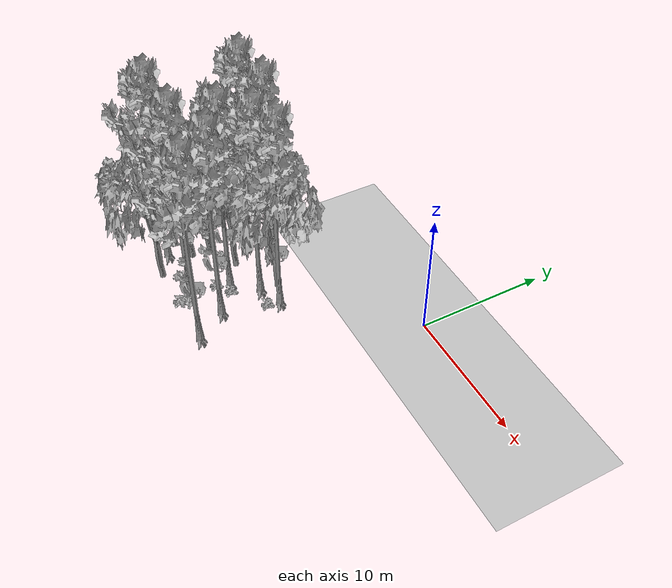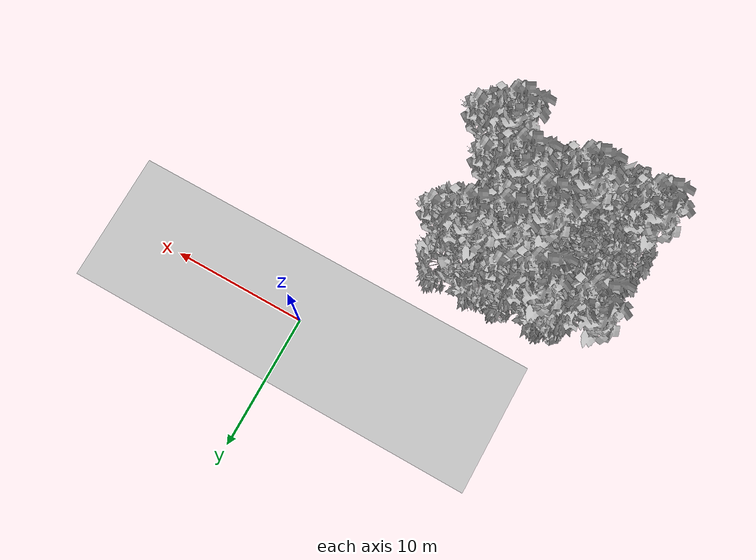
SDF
<sdf version="1.7">
 <world name="default">
  <model name="ground_plane">
   <static>1</static>
   <link name="link">
    <collision name="collision">
     <geometry><plane><normal>0 0 1</normal><size>100 100</size></plane></geometry>
     <surface><contact><ode><min_depth>0.01</min_depth><max_vel>0</max_vel></ode></contact></surface>
    </collision>
    <visual name="grass">
     <cast_shadows>0</cast_shadows>
     <geometry>
      <mesh>
       <scale>0.5814285714285714 0.18142857142857144 0.1</scale>
       <uri>file://grass_plane/meshes/grass_plane.dae</uri>
      </mesh>
     </geometry>
    </visual>
   </link>
  </model>
  <model name="Tree 33">
   <static>1</static>
   <pose>-8.080459085168307 -12.419843880254746 0 1.57079 -0 0</pose>
   <link name="link">
    <collision name="collision">
     <geometry><mesh><scale>3.5 5 3.5</scale><uri>model://tree_9/meshes/tree_9.obj</uri></mesh></geometry>
    </collision>
    <visual name="visual">
     <geometry><mesh><scale>3.5 5 3.5</scale><uri>model://tree_9/meshes/tree_9.obj</uri></mesh></geometry>
    </visual>
   </link>
  </model>
  <model name="Tree 43">
   <static>1</static>
   <pose>-8.754490061471422 -7.617909862327358 0 1.57079 -0 0</pose>
   <link name="link">
    <collision name="collision">
     <geometry><mesh><scale>3.5 5 3.5</scale><uri>model://tree_2/meshes/tree_2.obj</uri></mesh></geometry>
    </collision>
    <visual name="visual">
     <geometry><mesh><scale>3.5 5 3.5</scale><uri>model://tree_2/meshes/tree_2.obj</uri></mesh></geometry>
    </visual>
   </link>
  </model>
  <model name="Tree 127">
   <static>1</static>
   <pose>-12.28447054021619 -9.516433737853282 0 1.57079 -0 0</pose>
   <link name="link">
    <collision name="collision">
     <geometry><mesh><scale>3.5 5 3.5</scale><uri>model://tree_2/meshes/tree_2.obj</uri></mesh></geometry>
    </collision>
    <visual name="visual">
     <geometry><mesh><scale>3.5 5 3.5</scale><uri>model://tree_2/meshes/tree_2.obj</uri></mesh></geometry>
    </visual>
   </link>
  </model>
  <model name="Tree 161">
   <static>1</static>
   <pose>-8.87230667218028 -8.933598551255471 0 1.57079 -0 0</pose>
   <link name="link">
    <collision name="collision">
     <geometry><mesh><scale>3.5 5 3.5</scale><uri>model://tree_9/meshes/tree_9.obj</uri></mesh></geometry>
    </collision>
    <visual name="visual">
     <geometry><mesh><scale>3.5 5 3.5</scale><uri>model://tree_9/meshes/tree_9.obj</uri></mesh></geometry>
    </visual>
   </link>
  </model>
  <model name="Tree 205">
   <static>1</static>
   <pose>-11.820287213092293 -6.8594873090986574 0 1.57079 -0 0</pose>
   <link name="link">
    <collision name="collision">
     <geometry><mesh><scale>3.5 5 3.5</scale><uri>model://tree_9/meshes/tree_9.obj</uri></mesh></geometry>
    </collision>
    <visual name="visual">
     <geometry><mesh><scale>3.5 5 3.5</scale><uri>model://tree_9/meshes/tree_9.obj</uri></mesh></geometry>
    </visual>
   </link>
  </model>
  <model name="Tree 240">
   <static>1</static>
   <pose>-11.57441435363588 -13.574028697626435 0 1.57079 -0 0</pose>
   <link name="link">
    <collision name="collision">
     <geometry><mesh><scale>3.5 5 3.5</scale><uri>model://tree_9/meshes/tree_9.obj</uri></mesh></geometry>
    </collision>
    <visual name="visual">
     <geometry><mesh><scale>3.5 5 3.5</scale><uri>model://tree_9/meshes/tree_9.obj</uri></mesh></geometry>
    </visual>
   </link>
  </model>
  <model name="Tree 243">
   <static>1</static>
   <pose>-14.568413062435567 -10.731364737946873 0 1.57079 -0 0</pose>
   <link name="link">
    <collision name="collision">
     <geometry><mesh><scale>3.5 5 3.5</scale><uri>model://tree_2/meshes/tree_2.obj</uri></mesh></geometry>
    </collision>
    <visual name="visual">
     <geometry><mesh><scale>3.5 5 3.5</scale><uri>model://tree_2/meshes/tree_2.obj</uri></mesh></geometry>
    </visual>
   </link>
  </model>
  <model name="Tree 247">
   <static>1</static>
   <pose>-13.781406627922394 -14.926923229739067 0 1.57079 -0 0</pose>
   <link name="link">
    <collision name="collision">
     <geometry><mesh><scale>3.5 5 3.5</scale><uri>model://tree_2/meshes/tree_2.obj</uri></mesh></geometry>
    </collision>
    <visual name="visual">
     <geometry><mesh><scale>3.5 5 3.5</scale><uri>model://tree_2/meshes/tree_2.obj</uri></mesh></geometry>
    </visual>
   </link>
  </model>
  <model name="Tree 261">
   <static>1</static>
   <pose>-15.731006176981936 -13.73711943765807 0 1.57079 -0 0</pose>
   <link name="link">
    <collision name="collision">
     <geometry><mesh><scale>3.5 5 3.5</scale><uri>model://tree_9/meshes/tree_9.obj</uri></mesh></geometry>
    </collision>
    <visual name="visual">
     <geometry><mesh><scale>3.5 5 3.5</scale><uri>model://tree_9/meshes/tree_9.obj</uri></mesh></geometry>
    </visual>
   </link>
  </model>
  <model name="Tree 343">
   <static>1</static>
   <pose>-13.095785062576276 -8.01575105069945 0 1.57079 -0 0</pose>
   <link name="link">
    <collision name="collision">
     <geometry><mesh><scale>3.5 5 3.5</scale><uri>model://tree_2/meshes/tree_2.obj</uri></mesh></geometry>
    </collision>
    <visual name="visual">
     <geometry><mesh><scale>3.5 5 3.5</scale><uri>model://tree_2/meshes/tree_2.obj</uri></mesh></geometry>
    </visual>
   </link>
  </model>
  <model name="Tree 373">
   <static>1</static>
   <pose>-14.77392250069726 -12.111929029429065 0 1.57079 -0 0</pose>
   <link name="link">
    <collision name="collision">
     <geometry><mesh><scale>3.5 5 3.5</scale><uri>model://tree_2/meshes/tree_2.obj</uri></mesh></geometry>
    </collision>
    <visual name="visual">
     <geometry><mesh><scale>3.5 5 3.5</scale><uri>model://tree_2/meshes/tree_2.obj</uri></mesh></geometry>
    </visual>
   </link>
  </model>
  <model name="Tree 381">
   <static>1</static>
   <pose>-10.399505444146655 -10.744222679885944 0 1.57079 -0 0</pose>
   <link name="link">
    <collision name="collision">
     <geometry><mesh><scale>3.5 5 3.5</scale><uri>model://tree_9/meshes/tree_9.obj</uri></mesh></geometry>
    </collision>
    <visual name="visual">
     <geometry><mesh><scale>3.5 5 3.5</scale><uri>model://tree_9/meshes/tree_9.obj</uri></mesh></geometry>
    </visual>
   </link>
  </model>
  <model name="Tree 390">
   <static>1</static>
   <pose>-15.223832679607007 -7.077631882675264 0 1.57079 -0 0</pose>
   <link name="link">
    <collision name="collision">
     <geometry><mesh><scale>3.5 5 3.5</scale><uri>model://tree_9/meshes/tree_9.obj</uri></mesh></geometry>
    </collision>
    <visual name="visual">
     <geometry><mesh><scale>3.5 5 3.5</scale><uri>model://tree_9/meshes/tree_9.obj</uri></mesh></geometry>
    </visual>
   </link>
  </model>
  <model name="Tree 412">
   <static>1</static>
   <pose>-6.464910471212903 -14.748303208568402 0 1.57079 -0 0</pose>
   <link name="link">
    <collision name="collision">
     <geometry><mesh><scale>3.5 5 3.5</scale><uri>model://tree_9/meshes/tree_9.obj</uri></mesh></geometry>
    </collision>
    <visual name="visual">
     <geometry><mesh><scale>3.5 5 3.5</scale><uri>model://tree_9/meshes/tree_9.obj</uri></mesh></geometry>
    </visual>
   </link>
  </model>
  <model name="Tree 421">
   <static>1</static>
   <pose>-7.019535615817254 -8.184090600381046 0 1.57079 -0 0</pose>
   <link name="link">
    <collision name="collision">
     <geometry><mesh><scale>3.5 5 3.5</scale><uri>model://tree_9/meshes/tree_9.obj</uri></mesh></geometry>
    </collision>
    <visual name="visual">
     <geometry><mesh><scale>3.5 5 3.5</scale><uri>model://tree_9/meshes/tree_9.obj</uri></mesh></geometry>
    </visual>
   </link>
  </model>
  <model name="Bush 73">
   <static>1</static>
   <pose>-13.60921283616024 -10.302845597534613 0 1.57079 -0 0</pose>
   <link name="link">
    <collision name="collision">
     <geometry><mesh><scale>2 2 2</scale><uri>model://bush_2/meshes/bush_2.obj</uri></mesh></geometry>
     <surface><contact><collide_without_contact>false</collide_without_contact></contact></surface>
    </collision>
    <visual name="visual">
     <geometry><mesh><scale>2 2 2</scale><uri>model://bush_2/meshes/bush_2.obj</uri></mesh></geometry>
    </visual>
   </link>
  </model>
  <model name="Bush 211">
   <static>1</static>
   <pose>-10.624282822645753 -14.78435367973823 0 1.57079 -0 0</pose>
   <link name="link">
    <collision name="collision">
     <geometry><mesh><scale>2 2 2</scale><uri>model://bush_2/meshes/bush_2.obj</uri></mesh></geometry>
     <surface><contact><collide_without_contact>false</collide_without_contact></contact></surface>
    </collision>
    <visual name="visual">
     <geometry><mesh><scale>2 2 2</scale><uri>model://bush_2/meshes/bush_2.obj</uri></mesh></geometry>
    </visual>
   </link>
  </model>
  <model name="Bush 249">
   <static>1</static>
   <pose>-10.87409167543607 -11.73841171890868 0 1.57079 -0 0</pose>
   <link name="link">
    <collision name="collision">
     <geometry><mesh><scale>2 2 2</scale><uri>model://bush_2/meshes/bush_2.obj</uri></mesh></geometry>
     <surface><contact><collide_without_contact>false</collide_without_contact></contact></surface>
    </collision>
    <visual name="visual">
     <geometry><mesh><scale>2 2 2</scale><uri>model://bush_2/meshes/bush_2.obj</uri></mesh></geometry>
    </visual>
   </link>
  </model>
  <model name="Bush 288">
   <static>1</static>
   <pose>-9.79596553434095 -10.981327051012242 0 1.57079 -0 0</pose>
   <link name="link">
    <collision name="collision">
     <geometry><mesh><scale>2 2 2</scale><uri>model://bush_2/meshes/bush_2.obj</uri></mesh></geometry>
     <surface><contact><collide_without_contact>false</collide_without_contact></contact></surface>
    </collision>
    <visual name="visual">
     <geometry><mesh><scale>2 2 2</scale><uri>model://bush_2/meshes/bush_2.obj</uri></mesh></geometry>
    </visual>
   </link>
  </model>
  <model name="Bush 305">
   <static>1</static>
   <pose>-7.269854452135938 -9.148884834679981 0 1.57079 -0 0</pose>
   <link name="link">
    <collision name="collision">
     <geometry><mesh><scale>2 2 2</scale><uri>model://bush_2/meshes/bush_2.obj</uri></mesh></geometry>
     <surface><contact><collide_without_contact>false</collide_without_contact></contact></surface>
    </collision>
    <visual name="visual">
     <geometry><mesh><scale>2 2 2</scale><uri>model://bush_2/meshes/bush_2.obj</uri></mesh></geometry>
    </visual>
   </link>
  </model>
  <model name="Bush 312">
   <static>1</static>
   <pose>-11.767425836111109 -13.83179782365379 0 1.57079 -0 0</pose>
   <link name="link">
    <collision name="collision">
     <geometry><mesh><scale>2 2 2</scale><uri>model://bush_5/meshes/bush_5.obj</uri></mesh></geometry>
     <surface><contact><collide_without_contact>false</collide_without_contact></contact></surface>
    </collision>
    <visual name="visual">
     <geometry><mesh><scale>2 2 2</scale><uri>model://bush_5/meshes/bush_5.obj</uri></mesh></geometry>
    </visual>
   </link>
  </model>
  <model name="Bush 318">
   <static>1</static>
   <pose>-9.891332612930356 -14.239008755804376 0 1.57079 -0 0</pose>
   <link name="link">
    <collision name="collision">
     <geometry><mesh><scale>2 2 2</scale><uri>model://bush_3/meshes/bush_3.obj</uri></mesh></geometry>
     <surface><contact><collide_without_contact>false</collide_without_contact></contact></surface>
    </collision>
    <visual name="visual">
     <geometry><mesh><scale>2 2 2</scale><uri>model://bush_3/meshes/bush_3.obj</uri></mesh></geometry>
    </visual>
   </link>
  </model>
 </world>
</sdf>
